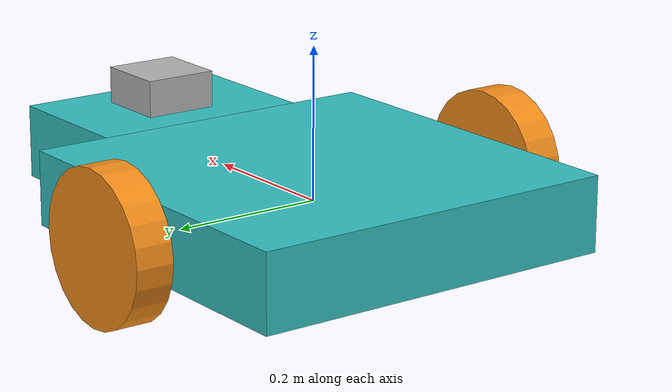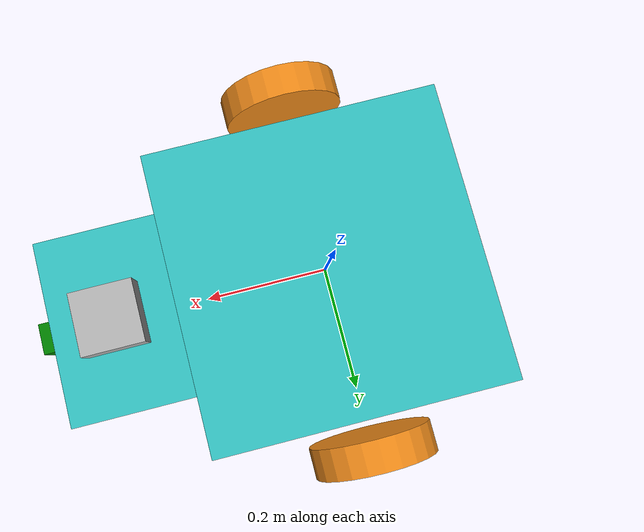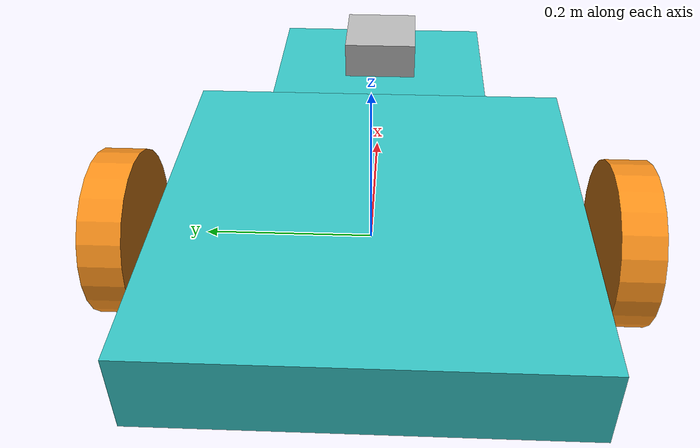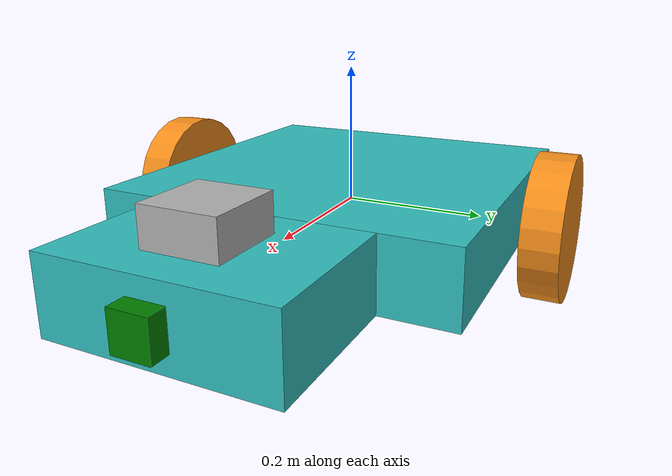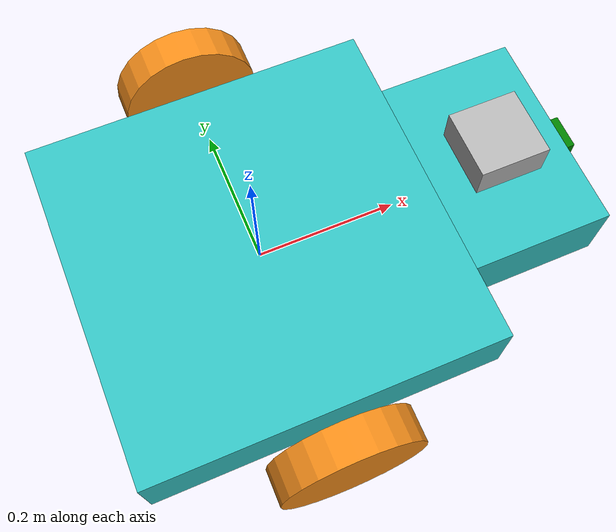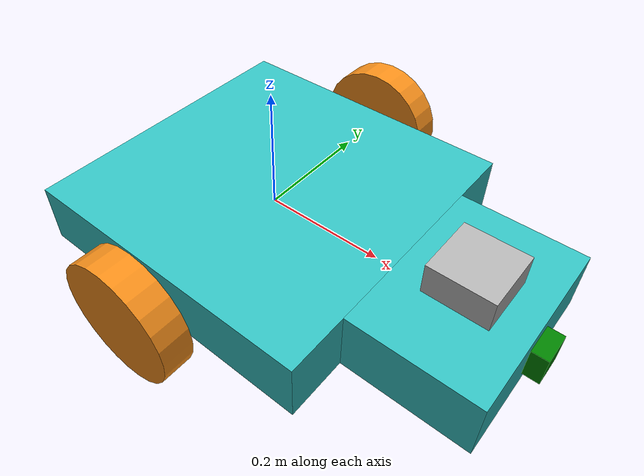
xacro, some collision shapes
<?xml version='1.0'?>

<robot name="ziz_bot" xmlns:xacro="http://www.ros.org/wiki/xacro">
<xacro:include filename="$(find jm_robot)/urdf/my_robot.gazebo" />

  <link name="robot_footprint"></link>

  <joint name="robot_footprint_joint" type="fixed">
    <origin xyz="0 0 0" rpy="0 0 0" />
    <parent link="robot_footprint"/>
    <child link="chassis" />
  </joint>

  <link name='chassis'>
    <pose>0 0 0.1 0 0 0</pose>

    <inertial>
      <mass value="15.0"/>
      <origin xyz="0.0 0 0" rpy=" 0 0 0"/>
      <inertia
          ixx="0.1" ixy="0" ixz="0"
          iyy="0.1" iyz="0"
          izz="0.1"
      />
    </inertial>

    <collision name='collision'>
      <origin xyz="0 0 0" rpy=" 0 0 0"/>
      <geometry>
        <box size=".5 .2 .1"/>
      </geometry>
    </collision>

    <visual name='chassis_visual'>
      <origin xyz="0 0 0" rpy=" 0 0 0"/>
      <geometry>
        <box size=".5 .5 .1"/>
      </geometry>

    </visual>

  </link>

  <link name='front_block'>
    <pose>0 0 0.1 0 0 0</pose>

    <inertial>
      <mass value="5.0"/>
      <origin xyz="0.0 0 0" rpy=" 0 0 0"/>
      <inertia
          ixx="0.1" ixy="0" ixz="0"
          iyy="0.1" iyz="0"
          izz="0.1"
      />
    </inertial>

    <collision name='front_block_collision'>
      <origin xyz="0 0 0" rpy=" 0 0 0"/>
      <geometry>
         <box size=".2 .3 .1"/>
      </geometry>
    </collision>

    <visual name='front_block_visual'>
      <origin xyz="0 0 0" rpy=" 0 0 0"/>
      <geometry>
         <box size=".2 .3 .1"/>
      </geometry>
    </visual>

  </link>

  <joint name="front_joint" type="fixed">
    <origin xyz="0.35 0 0" rpy="0 0 0" />
    <parent link="chassis"/>
    <child link="front_block" />
  </joint>

  <link name='left_wheel'>

    <inertial>
      <mass value="4.0"/>
      <origin xyz="0.0 0 0" rpy=" 0 1.57 1.57"/>
      <inertia
          ixx="0.1" ixy="0" ixz="0"
          iyy="0.1" iyz="0"
          izz="0.1"
      />
    </inertial>

    <collision name='left_wheel_collision'>
      <origin xyz="0.0 0 0" rpy=" 0 1.57 1.57"/>
      <geometry>
        <cylinder radius="0.1" length="0.05"/>
      </geometry>
    </collision>

    <visual name='left_wheel_visual'>
      <origin xyz="0.0 0 0" rpy=" 0 1.57 1.57"/>
      <geometry>
        <cylinder radius="0.1" length="0.05"/>
      </geometry>
    </visual>
  </link>

  <link name='right_wheel'>

    <inertial>
      <mass value="4.0"/>
      <origin xyz="0.0 0 0" rpy=" 0 1.57 1.57"/>
      <inertia
          ixx="0.1" ixy="0" ixz="0"
          iyy="0.1" iyz="0"
          izz="0.1"
      />
    </inertial>

    <collision name='right_wheel_collision'>
      <origin xyz="0.0 0 0" rpy=" 0 1.57 1.57"/>
      <geometry>
        <cylinder radius="0.1" length="0.05"/>
      </geometry>
    </collision>

    <visual name='right_wheel_visual'>
      <origin xyz="0.0 0 0" rpy=" 0 1.57 1.57"/>
      <geometry>
        <cylinder radius="0.1" length="0.05"/>
      </geometry>
    </visual>

  </link>

  <joint type="continuous" name="left_wheel_hinge">
    <origin xyz="0 -0.3 0" rpy="0 0 0"/>
    <child link="left_wheel"/>
    <parent link="chassis"/>
    <axis xyz="0 1 0" rpy="0 0 0"/>
    <limit effort="10000" velocity="1000"/>
    <dynamics damping="1.0" friction="1.0"/>
  </joint>

  <joint type="continuous" name="right_wheel_hinge">
    <origin xyz="0 0.3 0" rpy="0 0 0"/>
    <child link="right_wheel"/>
    <parent link="chassis"/>
    <axis xyz="0 1 0" rpy="0 0 0"/>
    <limit effort="10000" velocity="1000"/>
    <dynamics damping="1.0" friction="1.0"/>
  </joint>

  <link name='camera'>

    <inertial>
      <mass value="0.1"/>
      <origin xyz="0.05 0.05 0.05" rpy=" 0 0 0"/>
      <inertia
          ixx="1e-6" ixy="0" ixz="0"
          iyy="1e-6" iyz="0"
          izz="1e-6"
      />
    </inertial>

    <collision name='camera_collision'>
      <origin xyz="0.0 0 0" rpy=" 0 0 0"/>
      <geometry>
        <box size="0.05 0.05 0.05"/>
      </geometry>
    </collision>

    <visual name='camera_visual'>
      <origin xyz="0.0 0 0" rpy=" 0 0 0"/>
      <geometry>
        <box size="0.05 0.05 0.05"/>
      </geometry>
      <material name="green">
	<color rgba="0 0.5 0 1.0"/>
      </material>
    </visual>

  </link>

  <joint type="fixed" name="camera_joint">
    <origin xyz="0.1 0 0" rpy="0 0 0"/>
    <child link="camera"/>
    <parent link="front_block"/>
    <axis xyz="0 1 0" rpy="0 0 0"/>
  </joint>

    <link name="camera_rgbd_frame"/>
    <joint name="camera_frame_joint" type="fixed">
        <origin rpy="-1.5707 0 -1.5707" xyz="0 0 0"/>
        <parent link="camera"/>
        <child link="camera_rgbd_frame"/>
    </joint>

  <link name='hokuyo'>

    <inertial>
      <mass value="1e-5"/>
      <origin xyz="0.0 0.0 0.0" rpy=" 0 0 0"/>
      <inertia
          ixx="1e-6" ixy="0" ixz="0"
          iyy="1e-6" iyz="0"
          izz="1e-6"
      />
    </inertial>

    <collision name='hokuyo_collision'>
      <origin xyz="0.0 0 0" rpy=" 0 0 0"/>
      <geometry>
        <box size="0.1 0.1 0.1"/>
      </geometry>
    </collision>

    <visual name='hokuyo_visual'>
      <origin xyz="0.0 0 0" rpy=" 0 0 0"/>
      <geometry>
        <mesh filename="package://jm_robot/meshes/hokuyo.dae"/>
      </geometry>
    </visual>

  </link>

  <joint type="fixed" name="hokuyo_joint">
    <origin xyz="0 0 0.05" rpy="0 0 0"/>
    <child link="hokuyo"/>
    <parent link="front_block"/>
    <axis xyz="0 1 0" rpy="0 0 0"/>
  </joint>

<gazebo reference='chassis'>
      <material>Gazebo/Turquoise</material>
</gazebo>

<gazebo reference='front_block'>
      <material>Gazebo/Turquoise</material>
</gazebo>

<gazebo reference='left_wheel'>
      <material>Gazebo/Orange</material>
</gazebo>

<gazebo reference='right_wheel'>
      <material>Gazebo/Orange</material>
</gazebo>

<gazebo reference='camera'>
      <material>Gazebo/Green</material>
</gazebo>

</robot>
